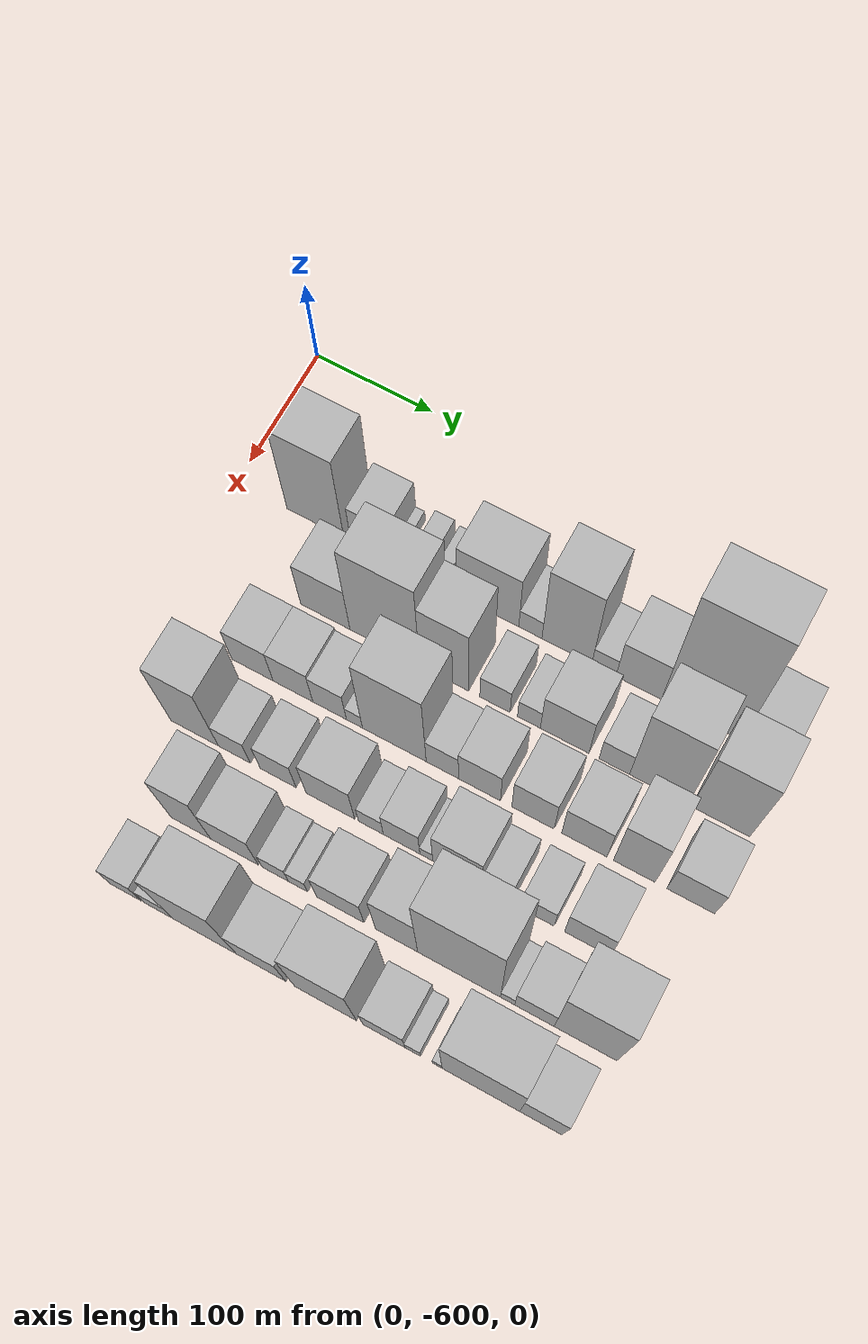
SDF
<sdf version="1.6">
 <world name="default">
  <model name="building_9">
   <static>1</static>
   <pose>100.0000 -532.4892 0 0.000000 0.000000 0.000000</pose>
   <link name="link">
    <pose>0 0 64.50 0 0 0</pose>
    <collision name="collision"><geometry><box><size>40.0000 48.2231 129.0000</size></box></geometry></collision>
    <visual name="visual">
     <cast_shadows>0</cast_shadows>
     <geometry><box><size>40.0000 48.2231 129.0000</size></box></geometry>
     <material>
      <script>
       <uri>model://HANNAS_wall/materials/scripts</uri>
       <uri>model://HANNAS_wall/materials/textures</uri>
       <name>vrc/HANNAS_wall</name>
      </script>
     </material>
    </visual>
   </link>
  </model>
  <model name="building_10">
   <static>1</static>
   <pose>100.0000 -486.0561 0 0.000000 0.000000 0.000000</pose>
   <link name="link">
    <pose>0 0 30.00 0 0 0</pose>
    <collision name="collision"><geometry><box><size>40.0000 32.6432 60.0000</size></box></geometry></collision>
    <visual name="visual">
     <cast_shadows>0</cast_shadows>
     <geometry><box><size>40.0000 32.6432 60.0000</size></box></geometry>
     <material>
      <script>
       <uri>model://HANNAS_wall/materials/scripts</uri>
       <uri>model://HANNAS_wall/materials/textures</uri>
       <name>vrc/HANNAS_wall</name>
      </script>
     </material>
    </visual>
   </link>
  </model>
  <model name="building_11">
   <static>1</static>
   <pose>100.0000 -465.9035 0 0.000000 0.000000 0.000000</pose>
   <link name="link">
    <pose>0 0 9.00 0 0 0</pose>
    <collision name="collision"><geometry><box><size>40.0000 7.6619 18.0000</size></box></geometry></collision>
    <visual name="visual">
     <cast_shadows>0</cast_shadows>
     <geometry><box><size>40.0000 7.6619 18.0000</size></box></geometry>
     <material>
      <script>
       <uri>model://HANNAS_wall/materials/scripts</uri>
       <uri>model://HANNAS_wall/materials/textures</uri>
       <name>vrc/HANNAS_wall</name>
      </script>
     </material>
    </visual>
   </link>
  </model>
  <model name="building_12">
   <static>1</static>
   <pose>100.0000 -445.1040 0 0.000000 0.000000 0.000000</pose>
   <link name="link">
    <pose>0 0 15.00 0 0 0</pose>
    <collision name="collision"><geometry><box><size>40.0000 15.9371 30.0000</size></box></geometry></collision>
    <visual name="visual">
     <cast_shadows>0</cast_shadows>
     <geometry><box><size>40.0000 15.9371 30.0000</size></box></geometry>
     <material>
      <script>
       <uri>model://HANNAS_wall/materials/scripts</uri>
       <uri>model://HANNAS_wall/materials/textures</uri>
       <name>vrc/HANNAS_wall</name>
      </script>
     </material>
    </visual>
   </link>
  </model>
  <model name="building_13">
   <static>1</static>
   <pose>100.0000 -427.6793 0 0.000000 0.000000 0.000000</pose>
   <link name="link">
    <pose>0 0 12.00 0 0 0</pose>
    <collision name="collision"><geometry><box><size>40.0000 10.9123 24.0000</size></box></geometry></collision>
    <visual name="visual">
     <cast_shadows>0</cast_shadows>
     <geometry><box><size>40.0000 10.9123 24.0000</size></box></geometry>
     <material>
      <script>
       <uri>model://HANNAS_wall/materials/scripts</uri>
       <uri>model://HANNAS_wall/materials/textures</uri>
       <name>vrc/HANNAS_wall</name>
      </script>
     </material>
    </visual>
   </link>
  </model>
  <model name="building_14">
   <static>1</static>
   <pose>100.0000 -388.5690 0 0.000000 0.000000 0.000000</pose>
   <link name="link">
    <pose>0 0 45.00 0 0 0</pose>
    <collision name="collision"><geometry><box><size>40.0000 51.3082 90.0000</size></box></geometry></collision>
    <visual name="visual">
     <cast_shadows>0</cast_shadows>
     <geometry><box><size>40.0000 51.3082 90.0000</size></box></geometry>
     <material>
      <script>
       <uri>model://HANNAS_wall/materials/scripts</uri>
       <uri>model://HANNAS_wall/materials/textures</uri>
       <name>vrc/HANNAS_wall</name>
      </script>
     </material>
    </visual>
   </link>
  </model>
  <model name="building_15">
   <static>1</static>
   <pose>100.0000 -353.4953 0 0.000000 0.000000 0.000000</pose>
   <link name="link">
    <pose>0 0 16.50 0 0 0</pose>
    <collision name="collision"><geometry><box><size>40.0000 18.8391 33.0000</size></box></geometry></collision>
    <visual name="visual">
     <cast_shadows>0</cast_shadows>
     <geometry><box><size>40.0000 18.8391 33.0000</size></box></geometry>
     <material>
      <script>
       <uri>model://HANNAS_wall/materials/scripts</uri>
       <uri>model://HANNAS_wall/materials/textures</uri>
       <name>vrc/HANNAS_wall</name>
      </script>
     </material>
    </visual>
   </link>
  </model>
  <model name="building_16">
   <static>1</static>
   <pose>100.0000 -323.8756 0 0.000000 0.000000 0.000000</pose>
   <link name="link">
    <pose>0 0 66.00 0 0 0</pose>
    <collision name="collision"><geometry><box><size>40.0000 40.4003 132.0000</size></box></geometry></collision>
    <visual name="visual">
     <cast_shadows>0</cast_shadows>
     <geometry><box><size>40.0000 40.4003 132.0000</size></box></geometry>
     <material>
      <script>
       <uri>model://HANNAS_wall/materials/scripts</uri>
       <uri>model://HANNAS_wall/materials/textures</uri>
       <name>vrc/HANNAS_wall</name>
      </script>
     </material>
    </visual>
   </link>
  </model>
  <model name="building_17">
   <static>1</static>
   <pose>100.0000 -293.9246 0 0.000000 0.000000 0.000000</pose>
   <link name="link">
    <pose>0 0 16.50 0 0 0</pose>
    <collision name="collision"><geometry><box><size>40.0000 19.5017 33.0000</size></box></geometry></collision>
    <visual name="visual">
     <cast_shadows>0</cast_shadows>
     <geometry><box><size>40.0000 19.5017 33.0000</size></box></geometry>
     <material>
      <script>
       <uri>model://HANNAS_wall/materials/scripts</uri>
       <uri>model://HANNAS_wall/materials/textures</uri>
       <name>vrc/HANNAS_wall</name>
      </script>
     </material>
    </visual>
   </link>
  </model>
  <model name="building_18">
   <static>1</static>
   <pose>100.0000 -266.0162 0 0.000000 0.000000 0.000000</pose>
   <link name="link">
    <pose>0 0 36.00 0 0 0</pose>
    <collision name="collision"><geometry><box><size>40.0000 36.3152 72.0000</size></box></geometry></collision>
    <visual name="visual">
     <cast_shadows>0</cast_shadows>
     <geometry><box><size>40.0000 36.3152 72.0000</size></box></geometry>
     <material>
      <script>
       <uri>model://HANNAS_wall/materials/scripts</uri>
       <uri>model://HANNAS_wall/materials/textures</uri>
       <name>vrc/HANNAS_wall</name>
      </script>
     </material>
    </visual>
   </link>
  </model>
  <model name="building_19">
   <static>1</static>
   <pose>100.0000 -216.1852 0 0.000000 0.000000 0.000000</pose>
   <link name="link">
    <pose>0 0 105.00 0 0 0</pose>
    <collision name="collision"><geometry><box><size>40.0000 63.3468 210.0000</size></box></geometry></collision>
    <visual name="visual">
     <cast_shadows>0</cast_shadows>
     <geometry><box><size>40.0000 63.3468 210.0000</size></box></geometry>
     <material>
      <script>
       <uri>model://HANNAS_wall/materials/scripts</uri>
       <uri>model://HANNAS_wall/materials/textures</uri>
       <name>vrc/HANNAS_wall</name>
      </script>
     </material>
    </visual>
   </link>
  </model>
  <model name="building_20">
   <static>1</static>
   <pose>100.0000 -167.2944 0 0.000000 0.000000 0.000000</pose>
   <link name="link">
    <pose>0 0 33.00 0 0 0</pose>
    <collision name="collision"><geometry><box><size>40.0000 34.4347 66.0000</size></box></geometry></collision>
    <visual name="visual">
     <cast_shadows>0</cast_shadows>
     <geometry><box><size>40.0000 34.4347 66.0000</size></box></geometry>
     <material>
      <script>
       <uri>model://HANNAS_wall/materials/scripts</uri>
       <uri>model://HANNAS_wall/materials/textures</uri>
       <name>vrc/HANNAS_wall</name>
      </script>
     </material>
    </visual>
   </link>
  </model>
  <model name="building_65">
   <static>1</static>
   <pose>160.0000 -489.5343 0 0.000000 0.000000 0.000000</pose>
   <link name="link">
    <pose>0 0 37.50 0 0 0</pose>
    <collision name="collision"><geometry><box><size>40.0000 41.0679 75.0000</size></box></geometry></collision>
    <visual name="visual">
     <cast_shadows>0</cast_shadows>
     <geometry><box><size>40.0000 41.0679 75.0000</size></box></geometry>
     <material>
      <script>
       <uri>model://HANNAS_wall/materials/scripts</uri>
       <uri>model://HANNAS_wall/materials/textures</uri>
       <name>vrc/HANNAS_wall</name>
      </script>
     </material>
    </visual>
   </link>
  </model>
  <model name="building_66">
   <static>1</static>
   <pose>160.0000 -440.2251 0 0.000000 0.000000 0.000000</pose>
   <link name="link">
    <pose>0 0 75.00 0 0 0</pose>
    <collision name="collision"><geometry><box><size>40.0000 57.5505 150.0000</size></box></geometry></collision>
    <visual name="visual">
     <cast_shadows>0</cast_shadows>
     <geometry><box><size>40.0000 57.5505 150.0000</size></box></geometry>
     <material>
      <script>
       <uri>model://HANNAS_wall/materials/scripts</uri>
       <uri>model://HANNAS_wall/materials/textures</uri>
       <name>vrc/HANNAS_wall</name>
      </script>
     </material>
    </visual>
   </link>
  </model>
  <model name="building_67">
   <static>1</static>
   <pose>160.0000 -391.5086 0 0.000000 0.000000 0.000000</pose>
   <link name="link">
    <pose>0 0 58.50 0 0 0</pose>
    <collision name="collision"><geometry><box><size>40.0000 39.8824 117.0000</size></box></geometry></collision>
    <visual name="visual">
     <cast_shadows>0</cast_shadows>
     <geometry><box><size>40.0000 39.8824 117.0000</size></box></geometry>
     <material>
      <script>
       <uri>model://HANNAS_wall/materials/scripts</uri>
       <uri>model://HANNAS_wall/materials/textures</uri>
       <name>vrc/HANNAS_wall</name>
      </script>
     </material>
    </visual>
   </link>
  </model>
  <model name="building_68">
   <static>1</static>
   <pose>160.0000 -350.3359 0 0.000000 0.000000 0.000000</pose>
   <link name="link">
    <pose>0 0 22.50 0 0 0</pose>
    <collision name="collision"><geometry><box><size>40.0000 24.4630 45.0000</size></box></geometry></collision>
    <visual name="visual">
     <cast_shadows>0</cast_shadows>
     <geometry><box><size>40.0000 24.4630 45.0000</size></box></geometry>
     <material>
      <script>
       <uri>model://HANNAS_wall/materials/scripts</uri>
       <uri>model://HANNAS_wall/materials/textures</uri>
       <name>vrc/HANNAS_wall</name>
      </script>
     </material>
    </visual>
   </link>
  </model>
  <model name="building_69">
   <static>1</static>
   <pose>160.0000 -322.9297 0 0.000000 0.000000 0.000000</pose>
   <link name="link">
    <pose>0 0 18.00 0 0 0</pose>
    <collision name="collision"><geometry><box><size>40.0000 18.3494 36.0000</size></box></geometry></collision>
    <visual name="visual">
     <cast_shadows>0</cast_shadows>
     <geometry><box><size>40.0000 18.3494 36.0000</size></box></geometry>
     <material>
      <script>
       <uri>model://HANNAS_wall/materials/scripts</uri>
       <uri>model://HANNAS_wall/materials/textures</uri>
       <name>vrc/HANNAS_wall</name>
      </script>
     </material>
    </visual>
   </link>
  </model>
  <model name="building_70">
   <static>1</static>
   <pose>160.0000 -294.4099 0 0.000000 0.000000 0.000000</pose>
   <link name="link">
    <pose>0 0 36.00 0 0 0</pose>
    <collision name="collision"><geometry><box><size>40.0000 38.6903 72.0000</size></box></geometry></collision>
    <visual name="visual">
     <cast_shadows>0</cast_shadows>
     <geometry><box><size>40.0000 38.6903 72.0000</size></box></geometry>
     <material>
      <script>
       <uri>model://HANNAS_wall/materials/scripts</uri>
       <uri>model://HANNAS_wall/materials/textures</uri>
       <name>vrc/HANNAS_wall</name>
      </script>
     </material>
    </visual>
   </link>
  </model>
  <model name="building_71">
   <static>1</static>
   <pose>160.0000 -255.0098 0 0.000000 0.000000 0.000000</pose>
   <link name="link">
    <pose>0 0 22.50 0 0 0</pose>
    <collision name="collision"><geometry><box><size>40.0000 24.1099 45.0000</size></box></geometry></collision>
    <visual name="visual">
     <cast_shadows>0</cast_shadows>
     <geometry><box><size>40.0000 24.1099 45.0000</size></box></geometry>
     <material>
      <script>
       <uri>model://HANNAS_wall/materials/scripts</uri>
       <uri>model://HANNAS_wall/materials/textures</uri>
       <name>vrc/HANNAS_wall</name>
      </script>
     </material>
    </visual>
   </link>
  </model>
  <model name="building_72">
   <static>1</static>
   <pose>160.0000 -220.1910 0 0.000000 0.000000 0.000000</pose>
   <link name="link">
    <pose>0 0 73.50 0 0 0</pose>
    <collision name="collision"><geometry><box><size>40.0000 45.5279 147.0000</size></box></geometry></collision>
    <visual name="visual">
     <cast_shadows>0</cast_shadows>
     <geometry><box><size>40.0000 45.5279 147.0000</size></box></geometry>
     <material>
      <script>
       <uri>model://HANNAS_wall/materials/scripts</uri>
       <uri>model://HANNAS_wall/materials/textures</uri>
       <name>vrc/HANNAS_wall</name>
      </script>
     </material>
    </visual>
   </link>
  </model>
  <model name="building_73">
   <static>1</static>
   <pose>160.0000 -171.8723 0 0.000000 0.000000 0.000000</pose>
   <link name="link">
    <pose>0 0 64.50 0 0 0</pose>
    <collision name="collision"><geometry><box><size>40.0000 45.1093 129.0000</size></box></geometry></collision>
    <visual name="visual">
     <cast_shadows>0</cast_shadows>
     <geometry><box><size>40.0000 45.1093 129.0000</size></box></geometry>
     <material>
      <script>
       <uri>model://HANNAS_wall/materials/scripts</uri>
       <uri>model://HANNAS_wall/materials/textures</uri>
       <name>vrc/HANNAS_wall</name>
      </script>
     </material>
    </visual>
   </link>
  </model>
  <model name="building_115">
   <static>1</static>
   <pose>220.0000 -515.2149 0 0.000000 0.000000 0.000000</pose>
   <link name="link">
    <pose>0 0 30.00 0 0 0</pose>
    <collision name="collision"><geometry><box><size>40.0000 34.4435 60.0000</size></box></geometry></collision>
    <visual name="visual">
     <cast_shadows>0</cast_shadows>
     <geometry><box><size>40.0000 34.4435 60.0000</size></box></geometry>
     <material>
      <script>
       <uri>model://HANNAS_wall/materials/scripts</uri>
       <uri>model://HANNAS_wall/materials/textures</uri>
       <name>vrc/HANNAS_wall</name>
      </script>
     </material>
    </visual>
   </link>
  </model>
  <model name="building_116">
   <static>1</static>
   <pose>220.0000 -481.5938 0 0.000000 0.000000 0.000000</pose>
   <link name="link">
    <pose>0 0 30.00 0 0 0</pose>
    <collision name="collision"><geometry><box><size>40.0000 32.7987 60.0000</size></box></geometry></collision>
    <visual name="visual">
     <cast_shadows>0</cast_shadows>
     <geometry><box><size>40.0000 32.7987 60.0000</size></box></geometry>
     <material>
      <script>
       <uri>model://HANNAS_wall/materials/scripts</uri>
       <uri>model://HANNAS_wall/materials/textures</uri>
       <name>vrc/HANNAS_wall</name>
      </script>
     </material>
    </visual>
   </link>
  </model>
  <model name="building_117">
   <static>1</static>
   <pose>220.0000 -451.3848 0 0.000000 0.000000 0.000000</pose>
   <link name="link">
    <pose>0 0 27.00 0 0 0</pose>
    <collision name="collision"><geometry><box><size>40.0000 27.6194 54.0000</size></box></geometry></collision>
    <visual name="visual">
     <cast_shadows>0</cast_shadows>
     <geometry><box><size>40.0000 27.6194 54.0000</size></box></geometry>
     <material>
      <script>
       <uri>model://HANNAS_wall/materials/scripts</uri>
       <uri>model://HANNAS_wall/materials/textures</uri>
       <name>vrc/HANNAS_wall</name>
      </script>
     </material>
    </visual>
   </link>
  </model>
  <model name="building_118">
   <static>1</static>
   <pose>220.0000 -431.1087 0 0.000000 0.000000 0.000000</pose>
   <link name="link">
    <pose>0 0 13.50 0 0 0</pose>
    <collision name="collision"><geometry><box><size>40.0000 12.9327 27.0000</size></box></geometry></collision>
    <visual name="visual">
     <cast_shadows>0</cast_shadows>
     <geometry><box><size>40.0000 12.9327 27.0000</size></box></geometry>
     <material>
      <script>
       <uri>model://HANNAS_wall/materials/scripts</uri>
       <uri>model://HANNAS_wall/materials/textures</uri>
       <name>vrc/HANNAS_wall</name>
      </script>
     </material>
    </visual>
   </link>
  </model>
  <model name="building_119">
   <static>1</static>
   <pose>220.0000 -398.8670 0 0.000000 0.000000 0.000000</pose>
   <link name="link">
    <pose>0 0 70.50 0 0 0</pose>
    <collision name="collision"><geometry><box><size>40.0000 51.5508 141.0000</size></box></geometry></collision>
    <visual name="visual">
     <cast_shadows>0</cast_shadows>
     <geometry><box><size>40.0000 51.5508 141.0000</size></box></geometry>
     <material>
      <script>
       <uri>model://HANNAS_wall/materials/scripts</uri>
       <uri>model://HANNAS_wall/materials/textures</uri>
       <name>vrc/HANNAS_wall</name>
      </script>
     </material>
    </visual>
   </link>
  </model>
  <model name="building_120">
   <static>1</static>
   <pose>220.0000 -360.1371 0 0.000000 0.000000 0.000000</pose>
   <link name="link">
    <pose>0 0 25.50 0 0 0</pose>
    <collision name="collision"><geometry><box><size>40.0000 25.9091 51.0000</size></box></geometry></collision>
    <visual name="visual">
     <cast_shadows>0</cast_shadows>
     <geometry><box><size>40.0000 25.9091 51.0000</size></box></geometry>
     <material>
      <script>
       <uri>model://HANNAS_wall/materials/scripts</uri>
       <uri>model://HANNAS_wall/materials/textures</uri>
       <name>vrc/HANNAS_wall</name>
      </script>
     </material>
    </visual>
   </link>
  </model>
  <model name="building_121">
   <static>1</static>
   <pose>220.0000 -330.4870 0 0.000000 0.000000 0.000000</pose>
   <link name="link">
    <pose>0 0 31.50 0 0 0</pose>
    <collision name="collision"><geometry><box><size>40.0000 33.3911 63.0000</size></box></geometry></collision>
    <visual name="visual">
     <cast_shadows>0</cast_shadows>
     <geometry><box><size>40.0000 33.3911 63.0000</size></box></geometry>
     <material>
      <script>
       <uri>model://HANNAS_wall/materials/scripts</uri>
       <uri>model://HANNAS_wall/materials/textures</uri>
       <name>vrc/HANNAS_wall</name>
      </script>
     </material>
    </visual>
   </link>
  </model>
  <model name="building_122">
   <static>1</static>
   <pose>220.0000 -288.1313 0 0.000000 0.000000 0.000000</pose>
   <link name="link">
    <pose>0 0 33.00 0 0 0</pose>
    <collision name="collision"><geometry><box><size>40.0000 33.3202 66.0000</size></box></geometry></collision>
    <visual name="visual">
     <cast_shadows>0</cast_shadows>
     <geometry><box><size>40.0000 33.3202 66.0000</size></box></geometry>
     <material>
      <script>
       <uri>model://HANNAS_wall/materials/scripts</uri>
       <uri>model://HANNAS_wall/materials/textures</uri>
       <name>vrc/HANNAS_wall</name>
      </script>
     </material>
    </visual>
   </link>
  </model>
  <model name="building_123">
   <static>1</static>
   <pose>220.0000 -247.7964 0 0.000000 0.000000 0.000000</pose>
   <link name="link">
    <pose>0 0 34.50 0 0 0</pose>
    <collision name="collision"><geometry><box><size>40.0000 35.3495 69.0000</size></box></geometry></collision>
    <visual name="visual">
     <cast_shadows>0</cast_shadows>
     <geometry><box><size>40.0000 35.3495 69.0000</size></box></geometry>
     <material>
      <script>
       <uri>model://HANNAS_wall/materials/scripts</uri>
       <uri>model://HANNAS_wall/materials/textures</uri>
       <name>vrc/HANNAS_wall</name>
      </script>
     </material>
    </visual>
   </link>
  </model>
  <model name="building_124">
   <static>1</static>
   <pose>220.0000 -208.9873 0 0.000000 0.000000 0.000000</pose>
   <link name="link">
    <pose>0 0 52.50 0 0 0</pose>
    <collision name="collision"><geometry><box><size>40.0000 32.2686 105.0000</size></box></geometry></collision>
    <visual name="visual">
     <cast_shadows>0</cast_shadows>
     <geometry><box><size>40.0000 32.2686 105.0000</size></box></geometry>
     <material>
      <script>
       <uri>model://HANNAS_wall/materials/scripts</uri>
       <uri>model://HANNAS_wall/materials/textures</uri>
       <name>vrc/HANNAS_wall</name>
      </script>
     </material>
    </visual>
   </link>
  </model>
  <model name="building_125">
   <static>1</static>
   <pose>220.0000 -165.4986 0 0.000000 0.000000 0.000000</pose>
   <link name="link">
    <pose>0 0 31.50 0 0 0</pose>
    <collision name="collision"><geometry><box><size>40.0000 36.7088 63.0000</size></box></geometry></collision>
    <visual name="visual">
     <cast_shadows>0</cast_shadows>
     <geometry><box><size>40.0000 36.7088 63.0000</size></box></geometry>
     <material>
      <script>
       <uri>model://HANNAS_wall/materials/scripts</uri>
       <uri>model://HANNAS_wall/materials/textures</uri>
       <name>vrc/HANNAS_wall</name>
      </script>
     </material>
    </visual>
   </link>
  </model>
  <model name="building_171">
   <static>1</static>
   <pose>280.0000 -527.1286 0 0.000000 0.000000 0.000000</pose>
   <link name="link">
    <pose>0 0 60.00 0 0 0</pose>
    <collision name="collision"><geometry><box><size>40.0000 39.2922 120.0000</size></box></geometry></collision>
    <visual name="visual">
     <cast_shadows>0</cast_shadows>
     <geometry><box><size>40.0000 39.2922 120.0000</size></box></geometry>
     <material>
      <script>
       <uri>model://HANNAS_wall/materials/scripts</uri>
       <uri>model://HANNAS_wall/materials/textures</uri>
       <name>vrc/HANNAS_wall</name>
      </script>
     </material>
    </visual>
   </link>
  </model>
  <model name="building_172">
   <static>1</static>
   <pose>280.0000 -494.3659 0 0.000000 0.000000 0.000000</pose>
   <link name="link">
    <pose>0 0 24.00 0 0 0</pose>
    <collision name="collision"><geometry><box><size>40.0000 26.2333 48.0000</size></box></geometry></collision>
    <visual name="visual">
     <cast_shadows>0</cast_shadows>
     <geometry><box><size>40.0000 26.2333 48.0000</size></box></geometry>
     <material>
      <script>
       <uri>model://HANNAS_wall/materials/scripts</uri>
       <uri>model://HANNAS_wall/materials/textures</uri>
       <name>vrc/HANNAS_wall</name>
      </script>
     </material>
    </visual>
   </link>
  </model>
  <model name="building_173">
   <static>1</static>
   <pose>280.0000 -458.6868 0 0.000000 0.000000 0.000000</pose>
   <link name="link">
    <pose>0 0 27.00 0 0 0</pose>
    <collision name="collision"><geometry><box><size>40.0000 29.1249 54.0000</size></box></geometry></collision>
    <visual name="visual">
     <cast_shadows>0</cast_shadows>
     <geometry><box><size>40.0000 29.1249 54.0000</size></box></geometry>
     <material>
      <script>
       <uri>model://HANNAS_wall/materials/scripts</uri>
       <uri>model://HANNAS_wall/materials/textures</uri>
       <name>vrc/HANNAS_wall</name>
      </script>
     </material>
    </visual>
   </link>
  </model>
  <model name="building_174">
   <static>1</static>
   <pose>280.0000 -416.4717 0 0.000000 0.000000 0.000000</pose>
   <link name="link">
    <pose>0 0 36.00 0 0 0</pose>
    <collision name="collision"><geometry><box><size>40.0000 39.3052 72.0000</size></box></geometry></collision>
    <visual name="visual">
     <cast_shadows>0</cast_shadows>
     <geometry><box><size>40.0000 39.3052 72.0000</size></box></geometry>
     <material>
      <script>
       <uri>model://HANNAS_wall/materials/scripts</uri>
       <uri>model://HANNAS_wall/materials/textures</uri>
       <name>vrc/HANNAS_wall</name>
      </script>
     </material>
    </visual>
   </link>
  </model>
  <model name="building_175">
   <static>1</static>
   <pose>280.0000 -383.8929 0 0.000000 0.000000 0.000000</pose>
   <link name="link">
    <pose>0 0 18.00 0 0 0</pose>
    <collision name="collision"><geometry><box><size>40.0000 19.8525 36.0000</size></box></geometry></collision>
    <visual name="visual">
     <cast_shadows>0</cast_shadows>
     <geometry><box><size>40.0000 19.8525 36.0000</size></box></geometry>
     <material>
      <script>
       <uri>model://HANNAS_wall/materials/scripts</uri>
       <uri>model://HANNAS_wall/materials/textures</uri>
       <name>vrc/HANNAS_wall</name>
      </script>
     </material>
    </visual>
   </link>
  </model>
  <model name="building_176">
   <static>1</static>
   <pose>280.0000 -359.4641 0 0.000000 0.000000 0.000000</pose>
   <link name="link">
    <pose>0 0 27.00 0 0 0</pose>
    <collision name="collision"><geometry><box><size>40.0000 29.0051 54.0000</size></box></geometry></collision>
    <visual name="visual">
     <cast_shadows>0</cast_shadows>
     <geometry><box><size>40.0000 29.0051 54.0000</size></box></geometry>
     <material>
      <script>
       <uri>model://HANNAS_wall/materials/scripts</uri>
       <uri>model://HANNAS_wall/materials/textures</uri>
       <name>vrc/HANNAS_wall</name>
      </script>
     </material>
    </visual>
   </link>
  </model>
  <model name="building_177">
   <static>1</static>
   <pose>280.0000 -339.8900 0 0.000000 0.000000 0.000000</pose>
   <link name="link">
    <pose>0 0 10.50 0 0 0</pose>
    <collision name="collision"><geometry><box><size>40.0000 10.1431 21.0000</size></box></geometry></collision>
    <visual name="visual">
     <cast_shadows>0</cast_shadows>
     <geometry><box><size>40.0000 10.1431 21.0000</size></box></geometry>
     <material>
      <script>
       <uri>model://HANNAS_wall/materials/scripts</uri>
       <uri>model://HANNAS_wall/materials/textures</uri>
       <name>vrc/HANNAS_wall</name>
      </script>
     </material>
    </visual>
   </link>
  </model>
  <model name="building_178">
   <static>1</static>
   <pose>280.0000 -315.3538 0 0.000000 0.000000 0.000000</pose>
   <link name="link">
    <pose>0 0 37.50 0 0 0</pose>
    <collision name="collision"><geometry><box><size>40.0000 38.9293 75.0000</size></box></geometry></collision>
    <visual name="visual">
     <cast_shadows>0</cast_shadows>
     <geometry><box><size>40.0000 38.9293 75.0000</size></box></geometry>
     <material>
      <script>
       <uri>model://HANNAS_wall/materials/scripts</uri>
       <uri>model://HANNAS_wall/materials/textures</uri>
       <name>vrc/HANNAS_wall</name>
      </script>
     </material>
    </visual>
   </link>
  </model>
  <model name="building_179">
   <static>1</static>
   <pose>280.0000 -284.4941 0 0.000000 0.000000 0.000000</pose>
   <link name="link">
    <pose>0 0 22.50 0 0 0</pose>
    <collision name="collision"><geometry><box><size>40.0000 22.7901 45.0000</size></box></geometry></collision>
    <visual name="visual">
     <cast_shadows>0</cast_shadows>
     <geometry><box><size>40.0000 22.7901 45.0000</size></box></geometry>
     <material>
      <script>
       <uri>model://HANNAS_wall/materials/scripts</uri>
       <uri>model://HANNAS_wall/materials/textures</uri>
       <name>vrc/HANNAS_wall</name>
      </script>
     </material>
    </visual>
   </link>
  </model>
  <model name="building_180">
   <static>1</static>
   <pose>280.0000 -253.0662 0 0.000000 0.000000 0.000000</pose>
   <link name="link">
    <pose>0 0 22.50 0 0 0</pose>
    <collision name="collision"><geometry><box><size>40.0000 26.0657 45.0000</size></box></geometry></collision>
    <visual name="visual">
     <cast_shadows>0</cast_shadows>
     <geometry><box><size>40.0000 26.0657 45.0000</size></box></geometry>
     <material>
      <script>
       <uri>model://HANNAS_wall/materials/scripts</uri>
       <uri>model://HANNAS_wall/materials/textures</uri>
       <name>vrc/HANNAS_wall</name>
      </script>
     </material>
    </visual>
   </link>
  </model>
  <model name="building_181">
   <static>1</static>
   <pose>280.0000 -214.3970 0 0.000000 0.000000 0.000000</pose>
   <link name="link">
    <pose>0 0 31.50 0 0 0</pose>
    <collision name="collision"><geometry><box><size>40.0000 35.2727 63.0000</size></box></geometry></collision>
    <visual name="visual">
     <cast_shadows>0</cast_shadows>
     <geometry><box><size>40.0000 35.2727 63.0000</size></box></geometry>
     <material>
      <script>
       <uri>model://HANNAS_wall/materials/scripts</uri>
       <uri>model://HANNAS_wall/materials/textures</uri>
       <name>vrc/HANNAS_wall</name>
      </script>
     </material>
    </visual>
   </link>
  </model>
  <model name="building_226">
   <static>1</static>
   <pose>340.0000 -493.7436 0 0.000000 0.000000 0.000000</pose>
   <link name="link">
    <pose>0 0 51.00 0 0 0</pose>
    <collision name="collision"><geometry><box><size>40.0000 32.1318 102.0000</size></box></geometry></collision>
    <visual name="visual">
     <cast_shadows>0</cast_shadows>
     <geometry><box><size>40.0000 32.1318 102.0000</size></box></geometry>
     <material>
      <script>
       <uri>model://HANNAS_wall/materials/scripts</uri>
       <uri>model://HANNAS_wall/materials/textures</uri>
       <name>vrc/HANNAS_wall</name>
      </script>
     </material>
    </visual>
   </link>
  </model>
  <model name="building_227">
   <static>1</static>
   <pose>340.0000 -458.4721 0 0.000000 0.000000 0.000000</pose>
   <link name="link">
    <pose>0 0 36.00 0 0 0</pose>
    <collision name="collision"><geometry><box><size>40.0000 38.4111 72.0000</size></box></geometry></collision>
    <visual name="visual">
     <cast_shadows>0</cast_shadows>
     <geometry><box><size>40.0000 38.4111 72.0000</size></box></geometry>
     <material>
      <script>
       <uri>model://HANNAS_wall/materials/scripts</uri>
       <uri>model://HANNAS_wall/materials/textures</uri>
       <name>vrc/HANNAS_wall</name>
      </script>
     </material>
    </visual>
   </link>
  </model>
  <model name="building_228">
   <static>1</static>
   <pose>340.0000 -425.7538 0 0.000000 0.000000 0.000000</pose>
   <link name="link">
    <pose>0 0 18.00 0 0 0</pose>
    <collision name="collision"><geometry><box><size>40.0000 21.0256 36.0000</size></box></geometry></collision>
    <visual name="visual">
     <cast_shadows>0</cast_shadows>
     <geometry><box><size>40.0000 21.0256 36.0000</size></box></geometry>
     <material>
      <script>
       <uri>model://HANNAS_wall/materials/scripts</uri>
       <uri>model://HANNAS_wall/materials/textures</uri>
       <name>vrc/HANNAS_wall</name>
      </script>
     </material>
    </visual>
   </link>
  </model>
  <model name="building_229">
   <static>1</static>
   <pose>340.0000 -407.6201 0 0.000000 0.000000 0.000000</pose>
   <link name="link">
    <pose>0 0 15.00 0 0 0</pose>
    <collision name="collision"><geometry><box><size>40.0000 15.2417 30.0000</size></box></geometry></collision>
    <visual name="visual">
     <cast_shadows>0</cast_shadows>
     <geometry><box><size>40.0000 15.2417 30.0000</size></box></geometry>
     <material>
      <script>
       <uri>model://HANNAS_wall/materials/scripts</uri>
       <uri>model://HANNAS_wall/materials/textures</uri>
       <name>vrc/HANNAS_wall</name>
      </script>
     </material>
    </visual>
   </link>
  </model>
  <model name="building_230">
   <static>1</static>
   <pose>340.0000 -374.2308 0 0.000000 0.000000 0.000000</pose>
   <link name="link">
    <pose>0 0 31.50 0 0 0</pose>
    <collision name="collision"><geometry><box><size>40.0000 37.5370 63.0000</size></box></geometry></collision>
    <visual name="visual">
     <cast_shadows>0</cast_shadows>
     <geometry><box><size>40.0000 37.5370 63.0000</size></box></geometry>
     <material>
      <script>
       <uri>model://HANNAS_wall/materials/scripts</uri>
       <uri>model://HANNAS_wall/materials/textures</uri>
       <name>vrc/HANNAS_wall</name>
      </script>
     </material>
    </visual>
   </link>
  </model>
  <model name="building_231">
   <static>1</static>
   <pose>340.0000 -329.9393 0 0.000000 0.000000 0.000000</pose>
   <link name="link">
    <pose>0 0 52.50 0 0 0</pose>
    <collision name="collision"><geometry><box><size>40.0000 33.0461 105.0000</size></box></geometry></collision>
    <visual name="visual">
     <cast_shadows>0</cast_shadows>
     <geometry><box><size>40.0000 33.0461 105.0000</size></box></geometry>
     <material>
      <script>
       <uri>model://HANNAS_wall/materials/scripts</uri>
       <uri>model://HANNAS_wall/materials/textures</uri>
       <name>vrc/HANNAS_wall</name>
      </script>
     </material>
    </visual>
   </link>
  </model>
  <model name="building_232">
   <static>1</static>
   <pose>340.0000 -281.5275 0 0.000000 0.000000 0.000000</pose>
   <link name="link">
    <pose>0 0 90.00 0 0 0</pose>
    <collision name="collision"><geometry><box><size>40.0000 63.7775 180.0000</size></box></geometry></collision>
    <visual name="visual">
     <cast_shadows>0</cast_shadows>
     <geometry><box><size>40.0000 63.7775 180.0000</size></box></geometry>
     <material>
      <script>
       <uri>model://HANNAS_wall/materials/scripts</uri>
       <uri>model://HANNAS_wall/materials/textures</uri>
       <name>vrc/HANNAS_wall</name>
      </script>
     </material>
    </visual>
   </link>
  </model>
  <model name="building_233">
   <static>1</static>
   <pose>340.0000 -244.1799 0 0.000000 0.000000 0.000000</pose>
   <link name="link">
    <pose>0 0 12.00 0 0 0</pose>
    <collision name="collision"><geometry><box><size>40.0000 10.9177 24.0000</size></box></geometry></collision>
    <visual name="visual">
     <cast_shadows>0</cast_shadows>
     <geometry><box><size>40.0000 10.9177 24.0000</size></box></geometry>
     <material>
      <script>
       <uri>model://HANNAS_wall/materials/scripts</uri>
       <uri>model://HANNAS_wall/materials/textures</uri>
       <name>vrc/HANNAS_wall</name>
      </script>
     </material>
    </visual>
   </link>
  </model>
  <model name="building_234">
   <static>1</static>
   <pose>340.0000 -223.6947 0 0.000000 0.000000 0.000000</pose>
   <link name="link">
    <pose>0 0 27.00 0 0 0</pose>
    <collision name="collision"><geometry><box><size>40.0000 30.0527 54.0000</size></box></geometry></collision>
    <visual name="visual">
     <cast_shadows>0</cast_shadows>
     <geometry><box><size>40.0000 30.0527 54.0000</size></box></geometry>
     <material>
      <script>
       <uri>model://HANNAS_wall/materials/scripts</uri>
       <uri>model://HANNAS_wall/materials/textures</uri>
       <name>vrc/HANNAS_wall</name>
      </script>
     </material>
    </visual>
   </link>
  </model>
  <model name="building_235">
   <static>1</static>
   <pose>340.0000 -184.9831 0 0.000000 0.000000 0.000000</pose>
   <link name="link">
    <pose>0 0 75.00 0 0 0</pose>
    <collision name="collision"><geometry><box><size>40.0000 47.3705 150.0000</size></box></geometry></collision>
    <visual name="visual">
     <cast_shadows>0</cast_shadows>
     <geometry><box><size>40.0000 47.3705 150.0000</size></box></geometry>
     <material>
      <script>
       <uri>model://HANNAS_wall/materials/scripts</uri>
       <uri>model://HANNAS_wall/materials/textures</uri>
       <name>vrc/HANNAS_wall</name>
      </script>
     </material>
    </visual>
   </link>
  </model>
  <model name="building_278">
   <static>1</static>
   <pose>400.0000 -509.7493 0 0.000000 0.000000 0.000000</pose>
   <link name="link">
    <pose>0 0 24.00 0 0 0</pose>
    <collision name="collision"><geometry><box><size>40.0000 25.0424 48.0000</size></box></geometry></collision>
    <visual name="visual">
     <cast_shadows>0</cast_shadows>
     <geometry><box><size>40.0000 25.0424 48.0000</size></box></geometry>
     <material>
      <script>
       <uri>model://HANNAS_wall/materials/scripts</uri>
       <uri>model://HANNAS_wall/materials/textures</uri>
       <name>vrc/HANNAS_wall</name>
      </script>
     </material>
    </visual>
   </link>
  </model>
  <model name="building_279">
   <static>1</static>
   <pose>400.0000 -482.8038 0 0.000000 0.000000 0.000000</pose>
   <link name="link">
    <pose>0 0 21.00 0 0 0</pose>
    <collision name="collision"><geometry><box><size>40.0000 22.8486 42.0000</size></box></geometry></collision>
    <visual name="visual">
     <cast_shadows>0</cast_shadows>
     <geometry><box><size>40.0000 22.8486 42.0000</size></box></geometry>
     <material>
      <script>
       <uri>model://HANNAS_wall/materials/scripts</uri>
       <uri>model://HANNAS_wall/materials/textures</uri>
       <name>vrc/HANNAS_wall</name>
      </script>
     </material>
    </visual>
   </link>
  </model>
  <model name="building_280">
   <static>1</static>
   <pose>400.0000 -446.3025 0 0.000000 0.000000 0.000000</pose>
   <link name="link">
    <pose>0 0 70.50 0 0 0</pose>
    <collision name="collision"><geometry><box><size>40.0000 50.1541 141.0000</size></box></geometry></collision>
    <visual name="visual">
     <cast_shadows>0</cast_shadows>
     <geometry><box><size>40.0000 50.1541 141.0000</size></box></geometry>
     <material>
      <script>
       <uri>model://HANNAS_wall/materials/scripts</uri>
       <uri>model://HANNAS_wall/materials/textures</uri>
       <name>vrc/HANNAS_wall</name>
      </script>
     </material>
    </visual>
   </link>
  </model>
  <model name="building_281">
   <static>1</static>
   <pose>400.0000 -401.7453 0 0.000000 0.000000 0.000000</pose>
   <link name="link">
    <pose>0 0 37.50 0 0 0</pose>
    <collision name="collision"><geometry><box><size>40.0000 38.9603 75.0000</size></box></geometry></collision>
    <visual name="visual">
     <cast_shadows>0</cast_shadows>
     <geometry><box><size>40.0000 38.9603 75.0000</size></box></geometry>
     <material>
      <script>
       <uri>model://HANNAS_wall/materials/scripts</uri>
       <uri>model://HANNAS_wall/materials/textures</uri>
       <name>vrc/HANNAS_wall</name>
      </script>
     </material>
    </visual>
   </link>
  </model>
  <model name="building_282">
   <static>1</static>
   <pose>400.0000 -351.2334 0 0.000000 0.000000 0.000000</pose>
   <link name="link">
    <pose>0 0 63.00 0 0 0</pose>
    <collision name="collision"><geometry><box><size>40.0000 48.0636 126.0000</size></box></geometry></collision>
    <visual name="visual">
     <cast_shadows>0</cast_shadows>
     <geometry><box><size>40.0000 48.0636 126.0000</size></box></geometry>
     <material>
      <script>
       <uri>model://HANNAS_wall/materials/scripts</uri>
       <uri>model://HANNAS_wall/materials/textures</uri>
       <name>vrc/HANNAS_wall</name>
      </script>
     </material>
    </visual>
   </link>
  </model>
  <model name="building_283">
   <static>1</static>
   <pose>400.0000 -306.0371 0 0.000000 0.000000 0.000000</pose>
   <link name="link">
    <pose>0 0 28.50 0 0 0</pose>
    <collision name="collision"><geometry><box><size>40.0000 32.3288 57.0000</size></box></geometry></collision>
    <visual name="visual">
     <cast_shadows>0</cast_shadows>
     <geometry><box><size>40.0000 32.3288 57.0000</size></box></geometry>
     <material>
      <script>
       <uri>model://HANNAS_wall/materials/scripts</uri>
       <uri>model://HANNAS_wall/materials/textures</uri>
       <name>vrc/HANNAS_wall</name>
      </script>
     </material>
    </visual>
   </link>
  </model>
  <model name="building_284">
   <static>1</static>
   <pose>400.0000 -283.9801 0 0.000000 0.000000 0.000000</pose>
   <link name="link">
    <pose>0 0 13.50 0 0 0</pose>
    <collision name="collision"><geometry><box><size>40.0000 11.7852 27.0000</size></box></geometry></collision>
    <visual name="visual">
     <cast_shadows>0</cast_shadows>
     <geometry><box><size>40.0000 11.7852 27.0000</size></box></geometry>
     <material>
      <script>
       <uri>model://HANNAS_wall/materials/scripts</uri>
       <uri>model://HANNAS_wall/materials/textures</uri>
       <name>vrc/HANNAS_wall</name>
      </script>
     </material>
    </visual>
   </link>
  </model>
  <model name="building_285">
   <static>1</static>
   <pose>400.0000 -265.3225 0 0.000000 0.000000 0.000000</pose>
   <link name="link">
    <pose>0 0 9.00 0 0 0</pose>
    <collision name="collision"><geometry><box><size>40.0000 7.5300 18.0000</size></box></geometry></collision>
    <visual name="visual">
     <cast_shadows>0</cast_shadows>
     <geometry><box><size>40.0000 7.5300 18.0000</size></box></geometry>
     <material>
      <script>
       <uri>model://HANNAS_wall/materials/scripts</uri>
       <uri>model://HANNAS_wall/materials/textures</uri>
       <name>vrc/HANNAS_wall</name>
      </script>
     </material>
    </visual>
   </link>
  </model>
  <model name="building_286">
   <static>1</static>
   <pose>400.0000 -232.3082 0 0.000000 0.000000 0.000000</pose>
   <link name="link">
    <pose>0 0 75.00 0 0 0</pose>
    <collision name="collision"><geometry><box><size>40.0000 58.4986 150.0000</size></box></geometry></collision>
    <visual name="visual">
     <cast_shadows>0</cast_shadows>
     <geometry><box><size>40.0000 58.4986 150.0000</size></box></geometry>
     <material>
      <script>
       <uri>model://HANNAS_wall/materials/scripts</uri>
       <uri>model://HANNAS_wall/materials/textures</uri>
       <name>vrc/HANNAS_wall</name>
      </script>
     </material>
    </visual>
   </link>
  </model>
  <model name="building_287">
   <static>1</static>
   <pose>400.0000 -187.4018 0 0.000000 0.000000 0.000000</pose>
   <link name="link">
    <pose>0 0 51.00 0 0 0</pose>
    <collision name="collision"><geometry><box><size>40.0000 31.3142 102.0000</size></box></geometry></collision>
    <visual name="visual">
     <cast_shadows>0</cast_shadows>
     <geometry><box><size>40.0000 31.3142 102.0000</size></box></geometry>
     <material>
      <script>
       <uri>model://HANNAS_wall/materials/scripts</uri>
       <uri>model://HANNAS_wall/materials/textures</uri>
       <name>vrc/HANNAS_wall</name>
      </script>
     </material>
    </visual>
   </link>
  </model>
 </world>
</sdf>
